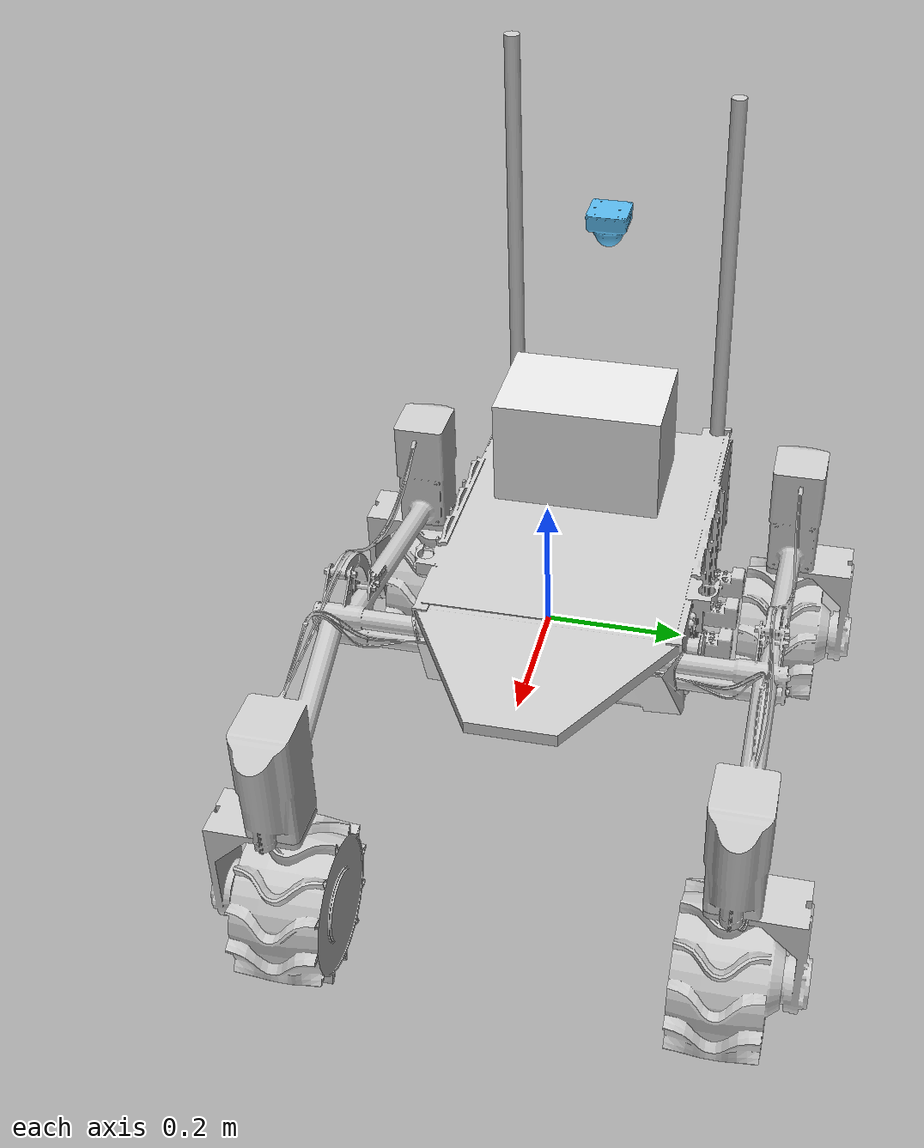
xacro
<?xml version="1.0"?>
<robot xmlns:xacro="http://www.ros.org/wiki/xacro" name="kalman">
    <!-- base Kalman links -->
    <xacro:include filename="$(find kalman_description)/urdf/kalman.urdf.xacro" />
    <xacro:kalman />

    <!-- IMU -->
    <link name="imu_link" />
    <joint name="imu_joint" type="fixed">
        <origin xyz="0.1 0.000 -0.015" rpy="0 0 -1.5708" />
        <parent link="base_link" />
        <child link="imu_link" />
    </joint>

    <!-- Altimeter -->
    <link name="altimeter_link" />
    <joint name="altimeter_joint" type="fixed">
        <origin xyz="0.088 0.000 -0.015" />
        <parent link="base_link" />
        <child link="altimeter_link" />
    </joint>

    <!-- GPS -->
    <link name="gps_link" />
    <joint name="gps_joint" type="fixed">
        <origin xyz="-0.560 -0.175 0.670" />
        <parent link="base_link" />
        <child link="gps_link" />
    </joint>

    <!-- Livox Mid-360s -->
    <link name="livox_frame">
        <visual>
            <geometry>
                <mesh filename="package://kalman_description/stl/MID360s.stl" />
            </geometry>
        </visual>
    </link>

    <joint name="livox_joint" type="fixed">
        <origin xyz="-0.45 0 0.43" rpy="${pi} 0 0" />
        <parent link="base_link" />
        <child link="livox_frame" />
    </joint>
    <!-- Livox IMU -->
    <link name="livox_imu_link" />
    <joint name="livox_imu_joint" type="fixed">
        <origin xyz="0.011 0.02329 -0.04412" rpy="0 0 0" />
        <parent link="livox_frame" />
        <child link="livox_imu_link" />
    </joint>
</robot>

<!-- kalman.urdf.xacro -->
<robot xmlns:xacro="http://www.ros.org/wiki/xacro" name="kalman">
    <xacro:macro name="kalman">
        <!-- https://www.ros.org/reps/rep-0120.html -->
        <link name="base_link" />
        <link name="base_footprint" />
        <joint name="base_footprint_joint" type="fixed">
            <origin xyz="-0.11 0 -0.45" />
            <parent link="base_link" />
            <child link="base_footprint" />
        </joint>

        <link name="rock_box">
            <visual>
                <origin xyz="0 0 0.05" rpy="0 0 0" />
                <geometry>
                    <box size="0.17 0.26 0.17" />
                </geometry>
                <material name="rock_box_mat">
                    <color rgba="0.9 0.9 0.9 1" />
                </material>
            </visual>
        </link>
        <joint name="base_to_rock_box_joint" type="fixed">
            <parent link="base_link" />
            <child link="rock_box" />
            <origin xyz="-0.28 0.0 0.1" rpy="0 0 0" />
        </joint>
        <!-- additional robot model -->
        <xacro:include filename="$(find kalman_description)/urdf/visual_model.urdf.xacro" />
        <xacro:visual_model base_link="base_link" />
    </xacro:macro>
</robot>

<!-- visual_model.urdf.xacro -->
<robot xmlns:xacro="http://www.ros.org/wiki/xacro" name="kalman">
    <xacro:macro name="visual_model" params="base_link">
        <xacro:include filename="$(find kalman_description)/urdf/cylinder_inertial.urdf.xacro" />

        <material name="white">
            <color rgba="0.8 0.8 0.8 1" />
        </material>

        <link name="body_link">
            <visual>
                <geometry>
                    <mesh filename="package://kalman_description/stl/body.stl" />
                </geometry>
                <material name="white" />
            </visual>
        </link>
        <joint name="body_joint" type="fixed">
            <parent link="${base_link}" />
            <child link="body_link" />
        </joint>

        <xacro:macro name="suspension" params="y_side y_scale">
            <link name="suspension_${y_side}_link">
                <visual>
                    <geometry>
                        <mesh filename="package://kalman_description/stl/suspension_r.stl"
                            scale="1 ${y_scale} 1" />
                    </geometry>
                    <material name="white" />
                </visual>
                <xacro:cylinder_inertial radius="0.1" length="1" mass="1">
                    <!-- This is not the correct intertia of the suspension,
                    but it shuts up the warnings when supsension is dynamic. -->
                    <origin rpy="1.5708 0 0" />
                </xacro:cylinder_inertial>
            </link>
            <joint name="suspension_${y_side}_joint" type="fixed">
                <!-- Suspension is static for now. -->
                <origin xyz="0.009 0 -0.06" />
                <axis xyz="0 1 0" />
                <parent link="body_link" />
                <child link="suspension_${y_side}_link" />
            </joint>
        </xacro:macro>
        <xacro:suspension y_side="r" y_scale="1" />
        <xacro:suspension y_side="l" y_scale="-1" />

        <xacro:macro name="swivel" params="x_side y_side y_scale xyz">
            <link name="swivel_${x_side}${y_side}_link">
                <visual>
                    <geometry>
                        <mesh filename="package://kalman_description/stl/swivel_fr.stl"
                            scale="1 ${y_scale} 1" />
                    </geometry>
                    <material name="white" />
                </visual>
                <xacro:cylinder_inertial radius="0.08" length="0.35" mass="2.25">
                    <origin xyz="0 0 -0.25" />
                </xacro:cylinder_inertial>
            </link>
            <joint name="swivel_${x_side}${y_side}_joint" type="continuous">
                <origin xyz="${xyz}" />
                <axis xyz="0 0 1" />
                <parent link="suspension_${y_side}_link" />
                <child link="swivel_${x_side}${y_side}_link" />
            </joint>
        </xacro:macro>
        <xacro:swivel x_side="f" y_side="r" y_scale="1" xyz="0.295 -0.333 0.06" />
        <xacro:swivel x_side="f" y_side="l" y_scale="-1" xyz="0.295 0.333 0.06" />
        <xacro:swivel x_side="b" y_side="r" y_scale="1" xyz="-0.497 -0.333 0.06" />
        <xacro:swivel x_side="b" y_side="l" y_scale="-1" xyz="-0.497 0.333 0.06" />

        <xacro:macro name="wheel" params="x_side y_side y_scale xyz">
            <link name="wheel_${x_side}${y_side}_link">
                <visual>
                    <geometry>
                        <mesh filename="package://kalman_description/stl/wheel_fr.stl"
                            scale="1 ${y_scale} 1" />
                    </geometry>
                    <material name="white" />
                </visual>
                <collision>
                    <origin rpy="1.5708 0 0" xyz="0 0 0" />
                    <geometry>
                        <cylinder radius="0.12" length="0.15" />
                    </geometry>
                </collision>
                <xacro:cylinder_inertial radius="0.12" length="0.15" mass="3.3">
                    <origin rpy="1.5708 0 0" xyz="0 0 0" />
                </xacro:cylinder_inertial>
            </link>
            <joint name="wheel_${x_side}${y_side}_joint" type="continuous">
                <origin xyz="${xyz}" />
                <axis xyz="0 1 0" />
                <parent link="swivel_${x_side}${y_side}_link" />
                <child link="wheel_${x_side}${y_side}_link" />
            </joint>
        </xacro:macro>
        <xacro:wheel x_side="f" y_side="r" y_scale="1" xyz="0 0 -0.363" />
        <xacro:wheel x_side="f" y_side="l" y_scale="-1" xyz="0 0 -0.363" />
        <xacro:wheel x_side="b" y_side="r" y_scale="1" xyz="0 0 -0.363" />
        <xacro:wheel x_side="b" y_side="l" y_scale="-1" xyz="0 0 -0.363" />
    </xacro:macro>
</robot>
